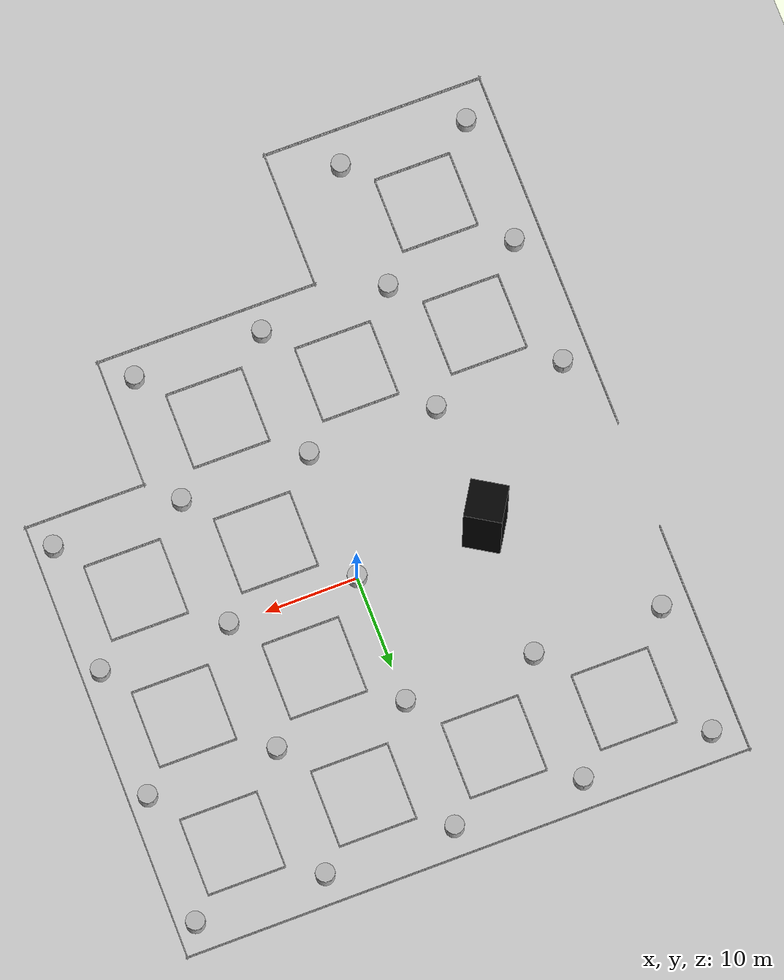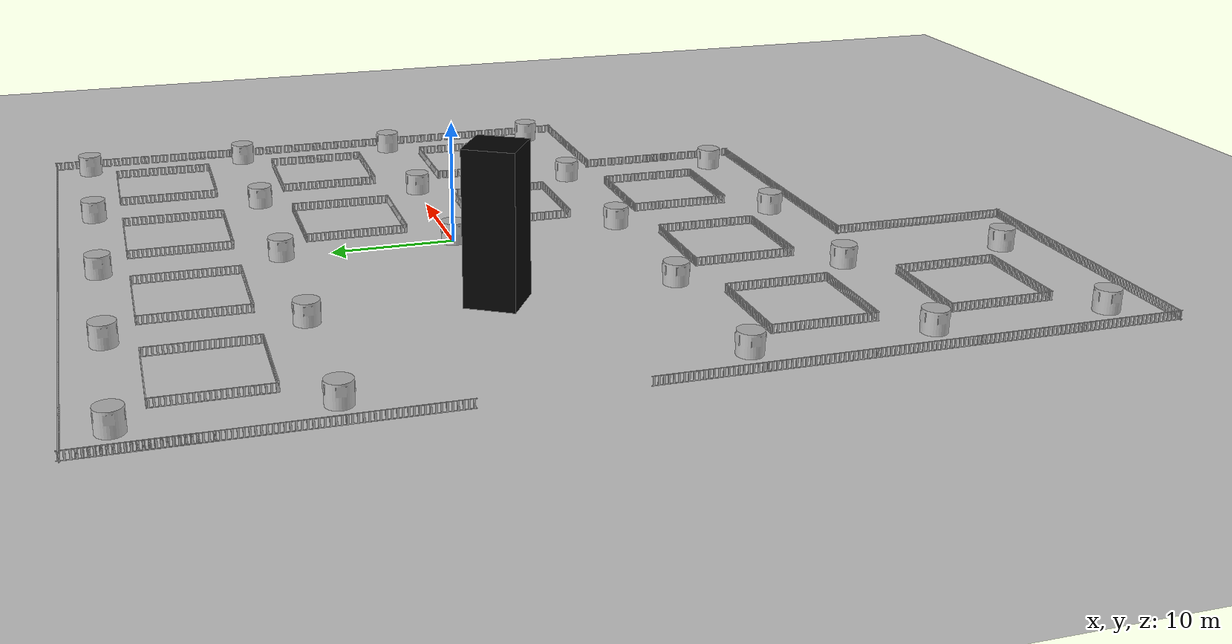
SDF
<sdf version='1.4'>
  <world name='default'>
    <!-- A global light source -->
    <include>
      <uri>model://sun</uri>
    </include>

    <!-- A ground plane -->
    <include>
      <uri>model://ground_plane</uri>
    </include>

    <physics type="ode">
      <real_time_update_rate>1000.0</real_time_update_rate>
      <max_step_size>0.001</max_step_size>
      <real_time_factor>1</real_time_factor>
      <ode>
        <solver>
          <type>quick</type>
          <iters>150</iters>
          <precon_iters>0</precon_iters>
          <sor>1.400000</sor>
          <use_dynamic_moi_rescaling>1</use_dynamic_moi_rescaling>
        </solver>
        <constraints>
          <cfm>0.00001</cfm>
          <erp>0.2</erp>
          <contact_max_correcting_vel>2000.000000</contact_max_correcting_vel>
          <contact_surface_layer>0.01000</contact_surface_layer>
        </constraints>
      </ode>
    </physics>

    <!-- Load world -->
    <include>
      <uri>model://turtlebot3_jussieu</uri>
    </include>

    <scene>
      <ambient>0.4 0.4 0.4 1</ambient>
      <background>0.7 0.7 0.7 1</background>
      <shadows>true</shadows>
    </scene>

    <gui fullscreen='0'>
      <camera name='user_camera'>
        <pose>0.8 0.0 12.0 0 1.5708 0</pose>
        <view_controller>orbit</view_controller>
      </camera>
    </gui>
  </world>
</sdf>

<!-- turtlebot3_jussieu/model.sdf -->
<sdf version='1.5'>
    <!-- Draw Circle -->
    <model name='Jussieu_World'>
      <static>1</static>
      <link name='jussieu'>

	<collision name='zamanski'>
          <pose>-14 0 0 0 0 45</pose>
          <geometry>
            <mesh>
              <uri>model://turtlebot3_jussieu/meshes/zamanski/zamanski.dae</uri>
              <scale>0.5 0.5 0.5</scale>
            </mesh>
          </geometry>
          <max_contacts>10</max_contacts>
          <surface>
            <bounce/>
            <friction>
              <ode/>
            </friction>
            <contact>
              <ode/>
            </contact>
          </surface>
        </collision>
        <visual name='zamanski'>
          <pose>-14 0 0 0 0 45</pose>
          <geometry>
            <mesh>
              <uri>model://turtlebot3_jussieu/meshes/zamanski/zamanski.dae</uri>
              <scale>0.5 0.5 0.5</scale>
            </mesh>
          </geometry>
          <material>
            <script>
            </script>
          </material>
        </visual>

	<collision name='barriere_H1'>
          <pose>-31 -10 0 0 0 0</pose>
          <geometry>
            <mesh>
              <uri>model://turtlebot3_jussieu/meshes/barrieres_H/barrieres_H.dae</uri>
              <scale>0.35 0.35 0.35</scale>
            </mesh>
          </geometry>
          <max_contacts>10</max_contacts>
          <surface>
            <bounce/>
            <friction>
              <ode/>
            </friction>
            <contact>
              <ode/>
            </contact>
          </surface>
        </collision>
        <visual name='barriere_H1'>
          <pose>-31 -10 0 0 0 0</pose>
          <geometry>
            <mesh>
              <uri>model://turtlebot3_jussieu/meshes/barrieres_H/barrieres_H.dae</uri>
              <scale>0.35 0.35 0.35</scale>
            </mesh>
          </geometry>
          <material>
            <script>
            </script>
          </material>
        </visual>

	<collision name='barriere_H3'>
          <pose>-31 -18 0 0 0 0</pose>
          <geometry>
            <mesh>
              <uri>model://turtlebot3_jussieu/meshes/barrieres_H/barrieres_H.dae</uri>
              <scale>0.35 0.35 0.35</scale>
            </mesh>
          </geometry>
          <max_contacts>10</max_contacts>
          <surface>
            <bounce/>
            <friction>
              <ode/>
            </friction>
            <contact>
              <ode/>
            </contact>
          </surface>
        </collision>
        <visual name='barriere_H3'>
          <pose>-31 -18 0 0 0 0</pose>
          <geometry>
            <mesh>
              <uri>model://turtlebot3_jussieu/meshes/barrieres_H/barrieres_H.dae</uri>
              <scale>0.35 0.35 0.35</scale>
            </mesh>
          </geometry>
          <material>
            <script>
            </script>
          </material>
        </visual>

	<collision name='barriere_H4'>
          <pose>-31 -26 0 0 0 0</pose>
          <geometry>
            <mesh>
              <uri>model://turtlebot3_jussieu/meshes/barrieres_H/barrieres_H.dae</uri>
              <scale>0.35 0.35 0.35</scale>
            </mesh>
          </geometry>
          <max_contacts>10</max_contacts>
          <surface>
            <bounce/>
            <friction>
              <ode/>
            </friction>
            <contact>
              <ode/>
            </contact>
          </surface>
        </collision>
        <visual name='barriere_H4'>
          <pose>-31 -26 0 0 0 0</pose>
          <geometry>
            <mesh>
              <uri>model://turtlebot3_jussieu/meshes/barrieres_H/barrieres_H.dae</uri>
              <scale>0.35 0.35 0.35</scale>
            </mesh>
          </geometry>
          <material>
            <script>
            </script>
          </material>
        </visual>

	<collision name='barriere_H5'>
          <pose>-31 -34 0 0 0 0</pose>
          <geometry>
            <mesh>
              <uri>model://turtlebot3_jussieu/meshes/barrieres_H/barrieres_H.dae</uri>
              <scale>0.35 0.35 0.35</scale>
            </mesh>
          </geometry>
          <max_contacts>10</max_contacts>
          <surface>
            <bounce/>
            <friction>
              <ode/>
            </friction>
            <contact>
              <ode/>
            </contact>
          </surface>
        </collision>
        <visual name='barriere_H5'>
          <pose>-31 -34 0 0 0 0</pose>
          <geometry>
            <mesh>
              <uri>model://turtlebot3_jussieu/meshes/barrieres_H/barrieres_H.dae</uri>
              <scale>0.35 0.35 0.35</scale>
            </mesh>
          </geometry>
          <material>
            <script>
            </script>
          </material>
        </visual>

	<collision name='barriere_H6'>
          <pose>-31 -42 0 0 0 0</pose>
          <geometry>
            <mesh>
              <uri>model://turtlebot3_jussieu/meshes/barrieres_H/barrieres_H.dae</uri>
              <scale>0.35 0.35 0.35</scale>
            </mesh>
          </geometry>
          <max_contacts>10</max_contacts>
          <surface>
            <bounce/>
            <friction>
              <ode/>
            </friction>
            <contact>
              <ode/>
            </contact>
          </surface>
        </collision>
        <visual name='barriere_H6'>
          <pose>-31 -42 0 0 0 0</pose>
          <geometry>
            <mesh>
              <uri>model://turtlebot3_jussieu/meshes/barrieres_H/barrieres_H.dae</uri>
              <scale>0.35 0.35 0.35</scale>
            </mesh>
          </geometry>
          <material>
            <script>
            </script>
          </material>
        </visual>

	<collision name='barriere_V7'>
          <pose>-27 -46 0 0 0 0</pose>
          <geometry>
            <mesh>
              <uri>model://turtlebot3_jussieu/meshes/barrieres_V/barrieres_V.dae</uri>
              <scale>0.35 0.35 0.35</scale>
            </mesh>
          </geometry>
          <max_contacts>10</max_contacts>
          <surface>
            <bounce/>
            <friction>
              <ode/>
            </friction>
            <contact>
              <ode/>
            </contact>
          </surface>
        </collision>
        <visual name='barriere_V7'>
          <pose>-27 -46 0 0 0 0</pose>
          <geometry>
            <mesh>
              <uri>model://turtlebot3_jussieu/meshes/barrieres_V/barrieres_V.dae</uri>
              <scale>0.35 0.35 0.35</scale>
            </mesh>
          </geometry>
          <material>
            <script>
            </script>
          </material>
        </visual>

	<collision name='barriere_V8'>
          <pose>-19 -46 0 0 0 0</pose>
          <geometry>
            <mesh>
              <uri>model://turtlebot3_jussieu/meshes/barrieres_V/barrieres_V.dae</uri>
              <scale>0.35 0.35 0.35</scale>
            </mesh>
          </geometry>
          <max_contacts>10</max_contacts>
          <surface>
            <bounce/>
            <friction>
              <ode/>
            </friction>
            <contact>
              <ode/>
            </contact>
          </surface>
        </collision>
        <visual name='barriere_V8'>
          <pose>-19 -46 0 0 0 0</pose>
          <geometry>
            <mesh>
              <uri>model://turtlebot3_jussieu/meshes/barrieres_V/barrieres_V.dae</uri>
              <scale>0.35 0.35 0.35</scale>
            </mesh>
          </geometry>
          <material>
            <script>
            </script>
          </material>
        </visual>

	<collision name='barriere_V9'>
          <pose>-11 -46 0 0 0 0</pose>
          <geometry>
            <mesh>
              <uri>model://turtlebot3_jussieu/meshes/barrieres_V/barrieres_V.dae</uri>
              <scale>0.35 0.35 0.35</scale>
            </mesh>
          </geometry>
          <max_contacts>10</max_contacts>
          <surface>
            <bounce/>
            <friction>
              <ode/>
            </friction>
            <contact>
              <ode/>
            </contact>
          </surface>
        </collision>
        <visual name='barriere_V9'>
          <pose>-11 -46 0 0 0 0</pose>
          <geometry>
            <mesh>
              <uri>model://turtlebot3_jussieu/meshes/barrieres_V/barrieres_V.dae</uri>
              <scale>0.35 0.35 0.35</scale>
            </mesh>
          </geometry>
          <material>
            <script>
            </script>
          </material>
        </visual>

	<collision name='barriere_H10'>
          <pose>-7 -42 0 0 0 0</pose>
          <geometry>
            <mesh>
              <uri>model://turtlebot3_jussieu/meshes/barrieres_H/barrieres_H.dae</uri>
              <scale>0.35 0.35 0.35</scale>
            </mesh>
          </geometry>
          <max_contacts>10</max_contacts>
          <surface>
            <bounce/>
            <friction>
              <ode/>
            </friction>
            <contact>
              <ode/>
            </contact>
          </surface>
        </collision>
        <visual name='barriere_H10'>
          <pose>-7 -42 0 0 0 0</pose>
          <geometry>
            <mesh>
              <uri>model://turtlebot3_jussieu/meshes/barrieres_H/barrieres_H.dae</uri>
              <scale>0.35 0.35 0.35</scale>
            </mesh>
          </geometry>
          <material>
            <script>
            </script>
          </material>
        </visual>

	<collision name='barriere_H11'>
          <pose>-7 -35 0 0 0 0</pose>
          <geometry>
            <mesh>
              <uri>model://turtlebot3_jussieu/meshes/barrieres_H/barrieres_H.dae</uri>
              <scale>0.35 0.35 0.35</scale>
            </mesh>
          </geometry>
          <max_contacts>10</max_contacts>
          <surface>
            <bounce/>
            <friction>
              <ode/>
            </friction>
            <contact>
              <ode/>
            </contact>
          </surface>
        </collision>
        <visual name='barriere_H11'>
          <pose>-7 -35 0 0 0 0</pose>
          <geometry>
            <mesh>
              <uri>model://turtlebot3_jussieu/meshes/barrieres_H/barrieres_H.dae</uri>
              <scale>0.35 0.35 0.35</scale>
            </mesh>
          </geometry>
          <material>
            <script>
            </script>
          </material>
        </visual>

	<collision name='barriere_V12'>
          <pose>-3 -31 0 0 0 0</pose>
          <geometry>
            <mesh>
              <uri>model://turtlebot3_jussieu/meshes/barrieres_V/barrieres_V.dae</uri>
              <scale>0.35 0.35 0.35</scale>
            </mesh>
          </geometry>
          <max_contacts>10</max_contacts>
          <surface>
            <bounce/>
            <friction>
              <ode/>
            </friction>
            <contact>
              <ode/>
            </contact>
          </surface>
        </collision>
        <visual name='barriere_V12'>
          <pose>-3 -31 0 0 0 0</pose>
          <geometry>
            <mesh>
              <uri>model://turtlebot3_jussieu/meshes/barrieres_V/barrieres_V.dae</uri>
              <scale>0.35 0.35 0.35</scale>
            </mesh>
          </geometry>
          <material>
            <script>
            </script>
          </material>
        </visual>

	<collision name='barriere_V13'>
          <pose>5 -31 0 0 0 0</pose>
          <geometry>
            <mesh>
              <uri>model://turtlebot3_jussieu/meshes/barrieres_V/barrieres_V.dae</uri>
              <scale>0.35 0.35 0.35</scale>
            </mesh>
          </geometry>
          <max_contacts>10</max_contacts>
          <surface>
            <bounce/>
            <friction>
              <ode/>
            </friction>
            <contact>
              <ode/>
            </contact>
          </surface>
        </collision>
        <visual name='barriere_V13'>
          <pose>5 -31 0 0 0 0</pose>
          <geometry>
            <mesh>
              <uri>model://turtlebot3_jussieu/meshes/barrieres_V/barrieres_V.dae</uri>
              <scale>0.35 0.35 0.35</scale>
            </mesh>
          </geometry>
          <material>
            <script>
            </script>
          </material>
        </visual>

	<collision name='barriere_V14'>
          <pose>13 -31 0 0 0 0</pose>
          <geometry>
            <mesh>
              <uri>model://turtlebot3_jussieu/meshes/barrieres_V/barrieres_V.dae</uri>
              <scale>0.35 0.35 0.35</scale>
            </mesh>
          </geometry>
          <max_contacts>10</max_contacts>
          <surface>
            <bounce/>
            <friction>
              <ode/>
            </friction>
            <contact>
              <ode/>
            </contact>
          </surface>
        </collision>
        <visual name='barriere_V14'>
          <pose>13 -31 0 0 0 0</pose>
          <geometry>
            <mesh>
              <uri>model://turtlebot3_jussieu/meshes/barrieres_V/barrieres_V.dae</uri>
              <scale>0.35 0.35 0.35</scale>
            </mesh>
          </geometry>
          <material>
            <script>
            </script>
          </material>
        </visual>

	<collision name='barriere_H15'>
          <pose>17 -27 0 0 0 0</pose>
          <geometry>
            <mesh>
              <uri>model://turtlebot3_jussieu/meshes/barrieres_H/barrieres_H.dae</uri>
              <scale>0.35 0.35 0.35</scale>
            </mesh>
          </geometry>
          <max_contacts>10</max_contacts>
          <surface>
            <bounce/>
            <friction>
              <ode/>
            </friction>
            <contact>
              <ode/>
            </contact>
          </surface>
        </collision>
        <visual name='barriere_H15'>
          <pose>17 -27 0 0 0 0</pose>
          <geometry>
            <mesh>
              <uri>model://turtlebot3_jussieu/meshes/barrieres_H/barrieres_H.dae</uri>
              <scale>0.35 0.35 0.35</scale>
            </mesh>
          </geometry>
          <material>
            <script>
            </script>
          </material>
        </visual>

	<collision name='barriere_H16'>
          <pose>17 -21 0 0 0 0</pose>
          <geometry>
            <mesh>
              <uri>model://turtlebot3_jussieu/meshes/barrieres_H/barrieres_H.dae</uri>
              <scale>0.35 0.35 0.35</scale>
            </mesh>
          </geometry>
          <max_contacts>10</max_contacts>
          <surface>
            <bounce/>
            <friction>
              <ode/>
            </friction>
            <contact>
              <ode/>
            </contact>
          </surface>
        </collision>
        <visual name='barriere_H16'>
          <pose>17 -21 0 0 0 0</pose>
          <geometry>
            <mesh>
              <uri>model://turtlebot3_jussieu/meshes/barrieres_H/barrieres_H.dae</uri>
              <scale>0.35 0.35 0.35</scale>
            </mesh>
          </geometry>
          <material>
            <script>
            </script>
          </material>
        </visual>

	<collision name='barriere_V17'>
          <pose>21 -17 0 0 0 0</pose>
          <geometry>
            <mesh>
              <uri>model://turtlebot3_jussieu/meshes/barrieres_V/barrieres_V.dae</uri>
              <scale>0.35 0.35 0.35</scale>
            </mesh>
          </geometry>
          <max_contacts>10</max_contacts>
          <surface>
            <bounce/>
            <friction>
              <ode/>
            </friction>
            <contact>
              <ode/>
            </contact>
          </surface>
        </collision>
        <visual name='barriere_V17'>
          <pose>21 -17 0 0 0 0</pose>
          <geometry>
            <mesh>
              <uri>model://turtlebot3_jussieu/meshes/barrieres_V/barrieres_V.dae</uri>
              <scale>0.35 0.35 0.35</scale>
            </mesh>
          </geometry>
          <material>
            <script>
            </script>
          </material>
        </visual>

	<collision name='barriere_V18'>
          <pose>26 -17 0 0 0 0</pose>
          <geometry>
            <mesh>
              <uri>model://turtlebot3_jussieu/meshes/barrieres_V/barrieres_V.dae</uri>
              <scale>0.35 0.35 0.35</scale>
            </mesh>
          </geometry>
          <max_contacts>10</max_contacts>
          <surface>
            <bounce/>
            <friction>
              <ode/>
            </friction>
            <contact>
              <ode/>
            </contact>
          </surface>
        </collision>
        <visual name='barriere_V18'>
          <pose>26 -17 0 0 0 0</pose>
          <geometry>
            <mesh>
              <uri>model://turtlebot3_jussieu/meshes/barrieres_V/barrieres_V.dae</uri>
              <scale>0.35 0.35 0.35</scale>
            </mesh>
          </geometry>
          <material>
            <script>
            </script>
          </material>
        </visual>

	<collision name='barriere_H19'>
          <pose>30 -13 0 0 0 0</pose>
          <geometry>
            <mesh>
              <uri>model://turtlebot3_jussieu/meshes/barrieres_H/barrieres_H.dae</uri>
              <scale>0.35 0.35 0.35</scale>
            </mesh>
          </geometry>
          <max_contacts>10</max_contacts>
          <surface>
            <bounce/>
            <friction>
              <ode/>
            </friction>
            <contact>
              <ode/>
            </contact>
          </surface>
        </collision>
        <visual name='barriere_H19'>
          <pose>30 -13 0 0 0 0</pose>
          <geometry>
            <mesh>
              <uri>model://turtlebot3_jussieu/meshes/barrieres_H/barrieres_H.dae</uri>
              <scale>0.35 0.35 0.35</scale>
            </mesh>
          </geometry>
          <material>
            <script>
            </script>
          </material>
        </visual>

	<collision name='barriere_H20'>
          <pose>30 -5 0 0 0 0</pose>
          <geometry>
            <mesh>
              <uri>model://turtlebot3_jussieu/meshes/barrieres_H/barrieres_H.dae</uri>
              <scale>0.35 0.35 0.35</scale>
            </mesh>
          </geometry>
          <max_contacts>10</max_contacts>
          <surface>
            <bounce/>
            <friction>
              <ode/>
            </friction>
            <contact>
              <ode/>
            </contact>
          </surface>
        </collision>
        <visual name='barriere_H20'>
          <pose>30 -5 0 0 0 0</pose>
          <geometry>
            <mesh>
              <uri>model://turtlebot3_jussieu/meshes/barrieres_H/barrieres_H.dae</uri>
              <scale>0.35 0.35 0.35</scale>
            </mesh>
          </geometry>
          <material>
            <script>
            </script>
          </material>
        </visual>

	<collision name='barriere_H21'>
          <pose>30 3 0 0 0 0</pose>
          <geometry>
            <mesh>
              <uri>model://turtlebot3_jussieu/meshes/barrieres_H/barrieres_H.dae</uri>
              <scale>0.35 0.35 0.35</scale>
            </mesh>
          </geometry>
          <max_contacts>10</max_contacts>
          <surface>
            <bounce/>
            <friction>
              <ode/>
            </friction>
            <contact>
              <ode/>
            </contact>
          </surface>
        </collision>
        <visual name='barriere_H21'>
          <pose>30 3 0 0 0 0</pose>
          <geometry>
            <mesh>
              <uri>model://turtlebot3_jussieu/meshes/barrieres_H/barrieres_H.dae</uri>
              <scale>0.35 0.35 0.35</scale>
            </mesh>
          </geometry>
          <material>
            <script>
            </script>
          </material>
        </visual>

	<collision name='barriere_H22'>
          <pose>30 11 0 0 0 0</pose>
          <geometry>
            <mesh>
              <uri>model://turtlebot3_jussieu/meshes/barrieres_H/barrieres_H.dae</uri>
              <scale>0.35 0.35 0.35</scale>
            </mesh>
          </geometry>
          <max_contacts>10</max_contacts>
          <surface>
            <bounce/>
            <friction>
              <ode/>
            </friction>
            <contact>
              <ode/>
            </contact>
          </surface>
        </collision>
        <visual name='barriere_H22'>
          <pose>30 11 0 0 0 0</pose>
          <geometry>
            <mesh>
              <uri>model://turtlebot3_jussieu/meshes/barrieres_H/barrieres_H.dae</uri>
              <scale>0.35 0.35 0.35</scale>
            </mesh>
          </geometry>
          <material>
            <script>
            </script>
          </material>
        </visual>

	<collision name='barriere_H23'>
          <pose>30 19 0 0 0 0</pose>
          <geometry>
            <mesh>
              <uri>model://turtlebot3_jussieu/meshes/barrieres_H/barrieres_H.dae</uri>
              <scale>0.35 0.35 0.35</scale>
            </mesh>
          </geometry>
          <max_contacts>10</max_contacts>
          <surface>
            <bounce/>
            <friction>
              <ode/>
            </friction>
            <contact>
              <ode/>
            </contact>
          </surface>
        </collision>
        <visual name='barriere_H23'>
          <pose>30 19 0 0 0 0</pose>
          <geometry>
            <mesh>
              <uri>model://turtlebot3_jussieu/meshes/barrieres_H/barrieres_H.dae</uri>
              <scale>0.35 0.35 0.35</scale>
            </mesh>
          </geometry>
          <material>
            <script>
            </script>
          </material>
        </visual>

	<collision name='barriere_H24'>
          <pose>30 27 0 0 0 0</pose>
          <geometry>
            <mesh>
              <uri>model://turtlebot3_jussieu/meshes/barrieres_H/barrieres_H.dae</uri>
              <scale>0.35 0.35 0.35</scale>
            </mesh>
          </geometry>
          <max_contacts>10</max_contacts>
          <surface>
            <bounce/>
            <friction>
              <ode/>
            </friction>
            <contact>
              <ode/>
            </contact>
          </surface>
        </collision>
        <visual name='barriere_H24'>
          <pose>30 27 0 0 0 0</pose>
          <geometry>
            <mesh>
              <uri>model://turtlebot3_jussieu/meshes/barrieres_H/barrieres_H.dae</uri>
              <scale>0.35 0.35 0.35</scale>
            </mesh>
          </geometry>
          <material>
            <script>
            </script>
          </material>
        </visual>

	<collision name='barriere_V25'>
          <pose>26 31 0 0 0 0</pose>
          <geometry>
            <mesh>
              <uri>model://turtlebot3_jussieu/meshes/barrieres_V/barrieres_V.dae</uri>
              <scale>0.35 0.35 0.35</scale>
            </mesh>
          </geometry>
          <max_contacts>10</max_contacts>
          <surface>
            <bounce/>
            <friction>
              <ode/>
            </friction>
            <contact>
              <ode/>
            </contact>
          </surface>
        </collision>
        <visual name='barriere_V25'>
          <pose>26 31 0 0 0 0</pose>
          <geometry>
            <mesh>
              <uri>model://turtlebot3_jussieu/meshes/barrieres_V/barrieres_V.dae</uri>
              <scale>0.35 0.35 0.35</scale>
            </mesh>
          </geometry>
          <material>
            <script>
            </script>
          </material>
        </visual>

	<collision name='barriere_V26'>
          <pose>18 31 0 0 0 0</pose>
          <geometry>
            <mesh>
              <uri>model://turtlebot3_jussieu/meshes/barrieres_V/barrieres_V.dae</uri>
              <scale>0.35 0.35 0.35</scale>
            </mesh>
          </geometry>
          <max_contacts>10</max_contacts>
          <surface>
            <bounce/>
            <friction>
              <ode/>
            </friction>
            <contact>
              <ode/>
            </contact>
          </surface>
        </collision>
        <visual name='barriere_V26'>
          <pose>18 31 0 0 0 0</pose>
          <geometry>
            <mesh>
              <uri>model://turtlebot3_jussieu/meshes/barrieres_V/barrieres_V.dae</uri>
              <scale>0.35 0.35 0.35</scale>
            </mesh>
          </geometry>
          <material>
            <script>
            </script>
          </material>
        </visual>

	<collision name='barriere_V27'>
          <pose>10 31 0 0 0 0</pose>
          <geometry>
            <mesh>
              <uri>model://turtlebot3_jussieu/meshes/barrieres_V/barrieres_V.dae</uri>
              <scale>0.35 0.35 0.35</scale>
            </mesh>
          </geometry>
          <max_contacts>10</max_contacts>
          <surface>
            <bounce/>
            <friction>
              <ode/>
            </friction>
            <contact>
              <ode/>
            </contact>
          </surface>
        </collision>
        <visual name='barriere_V27'>
          <pose>10 31 0 0 0 0</pose>
          <geometry>
            <mesh>
              <uri>model://turtlebot3_jussieu/meshes/barrieres_V/barrieres_V.dae</uri>
              <scale>0.35 0.35 0.35</scale>
            </mesh>
          </geometry>
          <material>
            <script>
            </script>
          </material>
        </visual>

	<collision name='barriere_V28'>
          <pose>2 31 0 0 0 0</pose>
          <geometry>
            <mesh>
              <uri>model://turtlebot3_jussieu/meshes/barrieres_V/barrieres_V.dae</uri>
              <scale>0.35 0.35 0.35</scale>
            </mesh>
          </geometry>
          <max_contacts>10</max_contacts>
          <surface>
            <bounce/>
            <friction>
              <ode/>
            </friction>
            <contact>
              <ode/>
            </contact>
          </surface>
        </collision>
        <visual name='barriere_V28'>
          <pose>2 31 0 0 0 0</pose>
          <geometry>
            <mesh>
              <uri>model://turtlebot3_jussieu/meshes/barrieres_V/barrieres_V.dae</uri>
              <scale>0.35 0.35 0.35</scale>
            </mesh>
          </geometry>
          <material>
            <script>
            </script>
          </material>
        </visual>

	<collision name='barriere_V29'>
          <pose>-6 31 0 0 0 0</pose>
          <geometry>
            <mesh>
              <uri>model://turtlebot3_jussieu/meshes/barrieres_V/barrieres_V.dae</uri>
              <scale>0.35 0.35 0.35</scale>
            </mesh>
          </geometry>
          <max_contacts>10</max_contacts>
          <surface>
            <bounce/>
            <friction>
              <ode/>
            </friction>
            <contact>
              <ode/>
            </contact>
          </surface>
        </collision>
        <visual name='barriere_V29'>
          <pose>-6 31 0 0 0 0</pose>
          <geometry>
            <mesh>
              <uri>model://turtlebot3_jussieu/meshes/barrieres_V/barrieres_V.dae</uri>
              <scale>0.35 0.35 0.35</scale>
            </mesh>
          </geometry>
          <material>
            <script>
            </script>
          </material>
        </visual>

	<collision name='barriere_V30'>
          <pose>-14 31 0 0 0 0</pose>
          <geometry>
            <mesh>
              <uri>model://turtlebot3_jussieu/meshes/barrieres_V/barrieres_V.dae</uri>
              <scale>0.35 0.35 0.35</scale>
            </mesh>
          </geometry>
          <max_contacts>10</max_contacts>
          <surface>
            <bounce/>
            <friction>
              <ode/>
            </friction>
            <contact>
              <ode/>
            </contact>
          </surface>
        </collision>
        <visual name='barriere_V30'>
          <pose>-14 31 0 0 0 0</pose>
          <geometry>
            <mesh>
              <uri>model://turtlebot3_jussieu/meshes/barrieres_V/barrieres_V.dae</uri>
              <scale>0.35 0.35 0.35</scale>
            </mesh>
          </geometry>
          <material>
            <script>
            </script>
          </material>
        </visual>

	<collision name='barriere_V31'>
          <pose>-22 31 0 0 0 0</pose>
          <geometry>
            <mesh>
              <uri>model://turtlebot3_jussieu/meshes/barrieres_V/barrieres_V.dae</uri>
              <scale>0.35 0.35 0.35</scale>
            </mesh>
          </geometry>
          <max_contacts>10</max_contacts>
          <surface>
            <bounce/>
            <friction>
              <ode/>
            </friction>
            <contact>
              <ode/>
            </contact>
          </surface>
        </collision>
        <visual name='barriere_V31'>
          <pose>-22 31 0 0 0 0</pose>
          <geometry>
            <mesh>
              <uri>model://turtlebot3_jussieu/meshes/barrieres_V/barrieres_V.dae</uri>
              <scale>0.35 0.35 0.35</scale>
            </mesh>
          </geometry>
          <material>
            <script>
            </script>
          </material>
        </visual>

	<collision name='barriere_V32'>
          <pose>-27 31 0 0 0 0</pose>
          <geometry>
            <mesh>
              <uri>model://turtlebot3_jussieu/meshes/barrieres_V/barrieres_V.dae</uri>
              <scale>0.35 0.35 0.35</scale>
            </mesh>
          </geometry>
          <max_contacts>10</max_contacts>
          <surface>
            <bounce/>
            <friction>
              <ode/>
            </friction>
            <contact>
              <ode/>
            </contact>
          </surface>
        </collision>
        <visual name='barriere_V32'>
          <pose>-27 31 0 0 0 0</pose>
          <geometry>
            <mesh>
              <uri>model://turtlebot3_jussieu/meshes/barrieres_V/barrieres_V.dae</uri>
              <scale>0.35 0.35 0.35</scale>
            </mesh>
          </geometry>
          <material>
            <script>
            </script>
          </material>
        </visual>

	<collision name='barriere_H33'>
          <pose>-31 18 0 0 0 0</pose>
          <geometry>
            <mesh>
              <uri>model://turtlebot3_jussieu/meshes/barrieres_H/barrieres_H.dae</uri>
              <scale>0.35 0.35 0.35</scale>
            </mesh>
          </geometry>
          <max_contacts>10</max_contacts>
          <surface>
            <bounce/>
            <friction>
              <ode/>
            </friction>
            <contact>
              <ode/>
            </contact>
          </surface>
        </collision>
        <visual name='barriere_H33'>
          <pose>-31 18 0 0 0 0</pose>
          <geometry>
            <mesh>
              <uri>model://turtlebot3_jussieu/meshes/barrieres_H/barrieres_H.dae</uri>
              <scale>0.35 0.35 0.35</scale>
            </mesh>
          </geometry>
          <material>
            <script>
            </script>
          </material>
        </visual>

	<collision name='barriere_H34'>
          <pose>-31 26 0 0 0 0</pose>
          <geometry>
            <mesh>
              <uri>model://turtlebot3_jussieu/meshes/barrieres_H/barrieres_H.dae</uri>
              <scale>0.35 0.35 0.35</scale>
            </mesh>
          </geometry>
          <max_contacts>10</max_contacts>
          <surface>
            <bounce/>
            <friction>
              <ode/>
            </friction>
            <contact>
              <ode/>
            </contact>
          </surface>
        </collision>
        <visual name='barriere_H34'>
          <pose>-31 26 0 0 0 0</pose>
          <geometry>
            <mesh>
              <uri>model://turtlebot3_jussieu/meshes/barrieres_H/barrieres_H.dae</uri>
              <scale>0.35 0.35 0.35</scale>
            </mesh>
          </geometry>
          <material>
            <script>
            </script>
          </material>
        </visual>

	<collision name='barriere_H35'>
          <pose>-31 27 0 0 0 0</pose>
          <geometry>
            <mesh>
              <uri>model://turtlebot3_jussieu/meshes/barrieres_H/barrieres_H.dae</uri>
              <scale>0.35 0.35 0.35</scale>
            </mesh>
          </geometry>
          <max_contacts>10</max_contacts>
          <surface>
            <bounce/>
            <friction>
              <ode/>
            </friction>
            <contact>
              <ode/>
            </contact>
          </surface>
        </collision>
        <visual name='barriere_H35'>
          <pose>-31 27 0 0 0 0</pose>
          <geometry>
            <mesh>
              <uri>model://turtlebot3_jussieu/meshes/barrieres_H/barrieres_H.dae</uri>
              <scale>0.35 0.35 0.35</scale>
            </mesh>
          </geometry>
          <material>
            <script>
            </script>
          </material>
        </visual>

	<collision name='barriere_H36'>
          <pose>-31 10 0 0 0 0</pose>
          <geometry>
            <mesh>
              <uri>model://turtlebot3_jussieu/meshes/barrieres_H/barrieres_H.dae</uri>
              <scale>0.35 0.35 0.35</scale>
            </mesh>
          </geometry>
          <max_contacts>10</max_contacts>
          <surface>
            <bounce/>
            <friction>
              <ode/>
            </friction>
            <contact>
              <ode/>
            </contact>
          </surface>
        </collision>
        <visual name='barriere_H36'>
          <pose>-31 10 0 0 0 0</pose>
          <geometry>
            <mesh>
              <uri>model://turtlebot3_jussieu/meshes/barrieres_H/barrieres_H.dae</uri>
              <scale>0.35 0.35 0.35</scale>
            </mesh>
          </geometry>
          <material>
            <script>
            </script>
          </material>
        </visual>

	<collision name='barriere_carre1'>
          <pose>-16.8 -25.2 0 0 0 0</pose>
          <geometry>
            <mesh>
              <uri>model://turtlebot3_jussieu/meshes/barrieres_carre/barrieres_carre.dae</uri>
              <scale>0.35 0.35 0.35</scale>
            </mesh>
          </geometry>
          <max_contacts>10</max_contacts>
          <surface>
            <bounce/>
            <friction>
              <ode/>
            </friction>
            <contact>
              <ode/>
            </contact>
          </surface>
        </collision>
        <visual name='barriere_carre1'>
          <pose>-16.8 -25.2 0 0 0 0</pose>
          <geometry>
            <mesh>
              <uri>model://turtlebot3_jussieu/meshes/barrieres_carre/barrieres_carre.dae</uri>
              <scale>0.35 0.35 0.35</scale>
            </mesh>
          </geometry>
          <material>
            <script>
            </script>
          </material>
        </visual>

	<collision name='barriere_carre2'>
          <pose>-16.8 -39.4 0 0 0 0</pose>
          <geometry>
            <mesh>
              <uri>model://turtlebot3_jussieu/meshes/barrieres_carre/barrieres_carre.dae</uri>
              <scale>0.35 0.35 0.35</scale>
            </mesh>
          </geometry>
          <max_contacts>10</max_contacts>
          <surface>
            <bounce/>
            <friction>
              <ode/>
            </friction>
            <contact>
              <ode/>
            </contact>
          </surface>
        </collision>
        <visual name='barriere_carre2'>
          <pose>-16.8 -39.4 0 0 0 0</pose>
          <geometry>
            <mesh>
              <uri>model://turtlebot3_jussieu/meshes/barrieres_carre/barrieres_carre.dae</uri>
              <scale>0.35 0.35 0.35</scale>
            </mesh>
          </geometry>
          <material>
            <script>
            </script>
          </material>
        </visual>

	<collision name='barriere_carre3'>
          <pose>-2.6 -25.2 0 0 0 0</pose>
          <geometry>
            <mesh>
              <uri>model://turtlebot3_jussieu/meshes/barrieres_carre/barrieres_carre.dae</uri>
              <scale>0.35 0.35 0.35</scale>
            </mesh>
          </geometry>
          <max_contacts>10</max_contacts>
          <surface>
            <bounce/>
            <friction>
              <ode/>
            </friction>
            <contact>
              <ode/>
            </contact>
          </surface>
        </collision>
        <visual name='barriere_carre3'>
          <pose>-2.6 -25.2 0 0 0 0</pose>
          <geometry>
            <mesh>
              <uri>model://turtlebot3_jussieu/meshes/barrieres_carre/barrieres_carre.dae</uri>
              <scale>0.35 0.35 0.35</scale>
            </mesh>
          </geometry>
          <material>
            <script>
            </script>
          </material>
        </visual>

	<collision name='barriere_carre4'>
          <pose>11.6 -11 0 0 0 0</pose>
          <geometry>
            <mesh>
              <uri>model://turtlebot3_jussieu/meshes/barrieres_carre/barrieres_carre.dae</uri>
              <scale>0.35 0.35 0.35</scale>
            </mesh>
          </geometry>
          <max_contacts>10</max_contacts>
          <surface>
            <bounce/>
            <friction>
              <ode/>
            </friction>
            <contact>
              <ode/>
            </contact>
          </surface>
        </collision>
        <visual name='barriere_carre4'>
          <pose>11.6 -11 0 0 0 0</pose>
          <geometry>
            <mesh>
              <uri>model://turtlebot3_jussieu/meshes/barrieres_carre/barrieres_carre.dae</uri>
              <scale>0.35 0.35 0.35</scale>
            </mesh>
          </geometry>
          <material>
            <script>
            </script>
          </material>
        </visual>

	<collision name='barriere_carre5'>
          <pose>11.6 -25.2 0 0 0 0</pose>
          <geometry>
            <mesh>
              <uri>model://turtlebot3_jussieu/meshes/barrieres_carre/barrieres_carre.dae</uri>
              <scale>0.35 0.35 0.35</scale>
            </mesh>
          </geometry>
          <max_contacts>10</max_contacts>
          <surface>
            <bounce/>
            <friction>
              <ode/>
            </friction>
            <contact>
              <ode/>
            </contact>
          </surface>
        </collision>
        <visual name='barriere_carre5'>
          <pose>11.6 -25.2 0 0 0 0</pose>
          <geometry>
            <mesh>
              <uri>model://turtlebot3_jussieu/meshes/barrieres_carre/barrieres_carre.dae</uri>
              <scale>0.35 0.35 0.35</scale>
            </mesh>
          </geometry>
          <material>
            <script>
            </script>
          </material>
        </visual>

	<collision name='barriere_carre6'>
          <pose>25.8 -11 0 0 0 0</pose>
          <geometry>
            <mesh>
              <uri>model://turtlebot3_jussieu/meshes/barrieres_carre/barrieres_carre.dae</uri>
              <scale>0.35 0.35 0.35</scale>
            </mesh>
          </geometry>
          <max_contacts>10</max_contacts>
          <surface>
            <bounce/>
            <friction>
              <ode/>
            </friction>
            <contact>
              <ode/>
            </contact>
          </surface>
        </collision>
        <visual name='barriere_carre6'>
          <pose>25.8 -11 0 0 0 0</pose>
          <geometry>
            <mesh>
              <uri>model://turtlebot3_jussieu/meshes/barrieres_carre/barrieres_carre.dae</uri>
              <scale>0.35 0.35 0.35</scale>
            </mesh>
          </geometry>
          <material>
            <script>
            </script>
          </material>
        </visual>

	<collision name='barriere_carre7'>
          <pose>25.8 3.2 0 0 0 0</pose>
          <geometry>
            <mesh>
              <uri>model://turtlebot3_jussieu/meshes/barrieres_carre/barrieres_carre.dae</uri>
              <scale>0.35 0.35 0.35</scale>
            </mesh>
          </geometry>
          <max_contacts>10</max_contacts>
          <surface>
            <bounce/>
            <friction>
              <ode/>
            </friction>
            <contact>
              <ode/>
            </contact>
          </surface>
        </collision>
        <visual name='barriere_carre7'>
          <pose>25.8 3.2 0 0 0 0</pose>
          <geometry>
            <mesh>
              <uri>model://turtlebot3_jussieu/meshes/barrieres_carre/barrieres_carre.dae</uri>
              <scale>0.35 0.35 0.35</scale>
            </mesh>
          </geometry>
          <material>
            <script>
            </script>
          </material>
        </visual>

	<collision name='barriere_carre8'>
          <pose>11.6 3.2 0 0 0 0</pose>
          <geometry>
            <mesh>
              <uri>model://turtlebot3_jussieu/meshes/barrieres_carre/barrieres_carre.dae</uri>
              <scale>0.35 0.35 0.35</scale>
            </mesh>
          </geometry>
          <max_contacts>10</max_contacts>
          <surface>
            <bounce/>
            <friction>
              <ode/>
            </friction>
            <contact>
              <ode/>
            </contact>
          </surface>
        </collision>
        <visual name='barriere_carre8'>
          <pose>11.6 3.2 0 0 0 0</pose>
          <geometry>
            <mesh>
              <uri>model://turtlebot3_jussieu/meshes/barrieres_carre/barrieres_carre.dae</uri>
              <scale>0.35 0.35 0.35</scale>
            </mesh>
          </geometry>
          <material>
            <script>
            </script>
          </material>
        </visual>

	<collision name='barriere_carre9'>
          <pose>25.8 17.4 0 0 0 0</pose>
          <geometry>
            <mesh>
              <uri>model://turtlebot3_jussieu/meshes/barrieres_carre/barrieres_carre.dae</uri>
              <scale>0.35 0.35 0.35</scale>
            </mesh>
          </geometry>
          <max_contacts>10</max_contacts>
          <surface>
            <bounce/>
            <friction>
              <ode/>
            </friction>
            <contact>
              <ode/>
            </contact>
          </surface>
        </collision>
        <visual name='barriere_carre9'>
          <pose>25.8 17.4 0 0 0 0</pose>
          <geometry>
            <mesh>
              <uri>model://turtlebot3_jussieu/meshes/barrieres_carre/barrieres_carre.dae</uri>
              <scale>0.35 0.35 0.35</scale>
            </mesh>
          </geometry>
          <material>
            <script>
            </script>
          </material>
        </visual>

	<collision name='barriere_carre10'>
          <pose>11.6 17.4 0 0 0 0</pose>
          <geometry>
            <mesh>
              <uri>model://turtlebot3_jussieu/meshes/barrieres_carre/barrieres_carre.dae</uri>
              <scale>0.35 0.35 0.35</scale>
            </mesh>
          </geometry>
          <max_contacts>10</max_contacts>
          <surface>
            <bounce/>
            <friction>
              <ode/>
            </friction>
            <contact>
              <ode/>
            </contact>
          </surface>
        </collision>
        <visual name='barriere_carre10'>
          <pose>11.6 17.4 0 0 0 0</pose>
          <geometry>
            <mesh>
              <uri>model://turtlebot3_jussieu/meshes/barrieres_carre/barrieres_carre.dae</uri>
              <scale>0.35 0.35 0.35</scale>
            </mesh>
          </geometry>
          <material>
            <script>
            </script>
          </material>
        </visual>

	<collision name='barriere_carre11'>
          <pose>-2.6 17.4 0 0 0 0</pose>
          <geometry>
            <mesh>
              <uri>model://turtlebot3_jussieu/meshes/barrieres_carre/barrieres_carre.dae</uri>
              <scale>0.35 0.35 0.35</scale>
            </mesh>
          </geometry>
          <max_contacts>10</max_contacts>
          <surface>
            <bounce/>
            <friction>
              <ode/>
            </friction>
            <contact>
              <ode/>
            </contact>
          </surface>
        </collision>
        <visual name='barriere_carre11'>
          <pose>-2.6 17.4 0 0 0 0</pose>
          <geometry>
            <mesh>
              <uri>model://turtlebot3_jussieu/meshes/barrieres_carre/barrieres_carre.dae</uri>
              <scale>0.35 0.35 0.35</scale>
            </mesh>
          </geometry>
          <material>
            <script>
            </script>
          </material>
        </visual>

	<collision name='barriere_carre12'>
          <pose>-16.8 17.4 0 0 0 0</pose>
          <geometry>
            <mesh>
              <uri>model://turtlebot3_jussieu/meshes/barrieres_carre/barrieres_carre.dae</uri>
              <scale>0.35 0.35 0.35</scale>
            </mesh>
          </geometry>
          <max_contacts>10</max_contacts>
          <surface>
            <bounce/>
            <friction>
              <ode/>
            </friction>
            <contact>
              <ode/>
            </contact>
          </surface>
        </collision>
        <visual name='barriere_carre12'>
          <pose>-16.8 17.4 0 0 0 0</pose>
          <geometry>
            <mesh>
              <uri>model://turtlebot3_jussieu/meshes/barrieres_carre/barrieres_carre.dae</uri>
              <scale>0.35 0.35 0.35</scale>
            </mesh>
          </geometry>
          <material>
            <script>
            </script>
          </material>
        </visual>

	<collision name='tour46'>
          <pose>-28 -14 0 0 0 0</pose>
          <geometry>
            <mesh>
              <uri>model://turtlebot3_jussieu/meshes/tour46/tour46.dae</uri>
              <scale>0.5 0.5 0.5</scale>
            </mesh>
          </geometry>
          <max_contacts>10</max_contacts>
          <surface>
            <bounce/>
            <friction>
              <ode/>
            </friction>
            <contact>
              <ode/>
            </contact>
          </surface>
        </collision>
        <visual name='tour46'>
          <pose>-28 -14 0 0 0 0</pose>
          <geometry>
            <mesh>
              <uri>model://turtlebot3_jussieu/meshes/tour46/tour46.dae</uri>
              <scale>0.5 0.5 0.5</scale>
            </mesh>
          </geometry>
          <material>
            <script>
            </script>
          </material>
        </visual>

	<collision name='tour56'>
          <pose>-28 -28 0 0 0 0</pose>
          <geometry>
            <mesh>
              <uri>model://turtlebot3_jussieu/meshes/tour56/tour56.dae</uri>
              <scale>0.5 0.5 0.5</scale>
            </mesh>
          </geometry>
          <max_contacts>10</max_contacts>
          <surface>
            <bounce/>
            <friction>
              <ode/>
            </friction>
            <contact>
              <ode/>
            </contact>
          </surface>
        </collision>
        <visual name='tour56'>
          <pose>-28 -28 0 0 0 0</pose>
          <geometry>
            <mesh>
              <uri>model://turtlebot3_jussieu/meshes/tour56/tour56.dae</uri>
              <scale>0.5 0.5 0.5</scale>
            </mesh>
          </geometry>
          <material>
            <script>
            </script>
          </material>
        </visual>

	<collision name='tour66'>
          <pose>-28 -42 0 0 0 0</pose>
          <geometry>
            <mesh>
              <uri>model://turtlebot3_jussieu/meshes/tour66/tour66.dae</uri>
              <scale>0.5 0.5 0.5</scale>
            </mesh>
          </geometry>
          <max_contacts>10</max_contacts>
          <surface>
            <bounce/>
            <friction>
              <ode/>
            </friction>
            <contact>
              <ode/>
            </contact>
          </surface>
        </collision>
        <visual name='tour66'>
          <pose>-28 -42 0 0 0 0</pose>
          <geometry>
            <mesh>
              <uri>model://turtlebot3_jussieu/meshes/tour66/tour66.dae</uri>
              <scale>0.5 0.5 0.5</scale>
            </mesh>
          </geometry>
          <material>
            <script>
            </script>
          </material>
        </visual>

	<collision name='tour65'>
          <pose>-14 -42 0 0 0 0</pose>
          <geometry>
            <mesh>
              <uri>model://turtlebot3_jussieu/meshes/tour65/tour65.dae</uri>
              <scale>0.5 0.5 0.5</scale>
            </mesh>
          </geometry>
          <max_contacts>10</max_contacts>
          <surface>
            <bounce/>
            <friction>
              <ode/>
            </friction>
            <contact>
              <ode/>
            </contact>
          </surface>
        </collision>
        <visual name='tour65'>
          <pose>-14 -42 0 0 0 0</pose>
          <geometry>
            <mesh>
              <uri>model://turtlebot3_jussieu/meshes/tour65/tour65.dae</uri>
              <scale>0.5 0.5 0.5</scale>
            </mesh>
          </geometry>
          <material>
            <script>
            </script>
          </material>
        </visual>

	<collision name='tour55'>
          <pose>-14 -28 0 0 0 0</pose>
          <geometry>
            <mesh>
              <uri>model://turtlebot3_jussieu/meshes/tour55/tour55.dae</uri>
              <scale>0.5 0.5 0.5</scale>
            </mesh>
          </geometry>
          <max_contacts>10</max_contacts>
          <surface>
            <bounce/>
            <friction>
              <ode/>
            </friction>
            <contact>
              <ode/>
            </contact>
          </surface>
        </collision>
        <visual name='tour55'>
          <pose>-14 -28 0 0 0 0</pose>
          <geometry>
            <mesh>
              <uri>model://turtlebot3_jussieu/meshes/tour55/tour55.dae</uri>
              <scale>0.5 0.5 0.5</scale>
            </mesh>
          </geometry>
          <material>
            <script>
            </script>
          </material>
        </visual>

	<collision name='tour45'>
          <pose>-14 -14 0 0 0 0</pose>
          <geometry>
            <mesh>
              <uri>model://turtlebot3_jussieu/meshes/tour45/tour45.dae</uri>
              <scale>0.5 0.5 0.5</scale>
            </mesh>
          </geometry>
          <max_contacts>10</max_contacts>
          <surface>
            <bounce/>
            <friction>
              <ode/>
            </friction>
            <contact>
              <ode/>
            </contact>
          </surface>
        </collision>
        <visual name='tour45'>
          <pose>-14 -14 0 0 0 0</pose>
          <geometry>
            <mesh>
              <uri>model://turtlebot3_jussieu/meshes/tour45/tour45.dae</uri>
              <scale>0.5 0.5 0.5</scale>
            </mesh>
          </geometry>
          <material>
            <script>
            </script>
          </material>
        </visual>

	<collision name='tour44'>
          <pose>0 -14 0 0 0 0</pose>
          <geometry>
            <mesh>
              <uri>model://turtlebot3_jussieu/meshes/tour44/tour44.dae</uri>
              <scale>0.5 0.5 0.5</scale>
            </mesh>
          </geometry>
          <max_contacts>10</max_contacts>
          <surface>
            <bounce/>
            <friction>
              <ode/>
            </friction>
            <contact>
              <ode/>
            </contact>
          </surface>
        </collision>
        <visual name='tour44'>
          <pose>0 -14 0 0 0 0</pose>
          <geometry>
            <mesh>
              <uri>model://turtlebot3_jussieu/meshes/tour44/tour44.dae</uri>
              <scale>0.5 0.5 0.5</scale>
            </mesh>
          </geometry>
          <material>
            <script>
            </script>
          </material>
        </visual>

	<collision name='tour34'>
          <pose>0 0 0 0 0 0</pose>
          <geometry>
            <mesh>
              <uri>model://turtlebot3_jussieu/meshes/tour34/tour34.dae</uri>
              <scale>0.5 0.5 0.5</scale>
            </mesh>
          </geometry>
          <max_contacts>10</max_contacts>
          <surface>
            <bounce/>
            <friction>
              <ode/>
            </friction>
            <contact>
              <ode/>
            </contact>
          </surface>
        </collision>
        <visual name='tour34'>
          <pose>0 0 0 0 0 0</pose>
          <geometry>
            <mesh>
              <uri>model://turtlebot3_jussieu/meshes/tour34/tour34.dae</uri>
              <scale>0.5 0.5 0.5</scale>
            </mesh>
          </geometry>
          <material>
            <script>
            </script>
          </material>
        </visual>

	<collision name='tour33'>
          <pose>14 0 0 0 0 0</pose>
          <geometry>
            <mesh>
              <uri>model://turtlebot3_jussieu/meshes/tour33/tour33.dae</uri>
              <scale>0.5 0.5 0.5</scale>
            </mesh>
          </geometry>
          <max_contacts>10</max_contacts>
          <surface>
            <bounce/>
            <friction>
              <ode/>
            </friction>
            <contact>
              <ode/>
            </contact>
          </surface>
        </collision>
        <visual name='tour33'>
          <pose>14 0 0 0 0 0</pose>
          <geometry>
            <mesh>
              <uri>model://turtlebot3_jussieu/meshes/tour33/tour33.dae</uri>
              <scale>0.5 0.5 0.5</scale>
            </mesh>
          </geometry>
          <material>
            <script>
            </script>
          </material>
        </visual>

	<collision name='tour32'>
          <pose>28 0 0 0 0 0</pose>
          <geometry>
            <mesh>
              <uri>model://turtlebot3_jussieu/meshes/tour32/tour32.dae</uri>
              <scale>0.5 0.5 0.5</scale>
            </mesh>
          </geometry>
          <max_contacts>10</max_contacts>
          <surface>
            <bounce/>
            <friction>
              <ode/>
            </friction>
            <contact>
              <ode/>
            </contact>
          </surface>
        </collision>
        <visual name='tour32'>
          <pose>28 0 0 0 0 0</pose>
          <geometry>
            <mesh>
              <uri>model://turtlebot3_jussieu/meshes/tour32/tour32.dae</uri>
              <scale>0.5 0.5 0.5</scale>
            </mesh>
          </geometry>
          <material>
            <script>
            </script>
          </material>
        </visual>

	<collision name='tour54'>
          <pose>0 -28 0 0 0 0</pose>
          <geometry>
            <mesh>
              <uri>model://turtlebot3_jussieu/meshes/tour54/tour54.dae</uri>
              <scale>0.5 0.5 0.5</scale>
            </mesh>
          </geometry>
          <max_contacts>10</max_contacts>
          <surface>
            <bounce/>
            <friction>
              <ode/>
            </friction>
            <contact>
              <ode/>
            </contact>
          </surface>
        </collision>
        <visual name='tour54'>
          <pose>0 -28 0 0 0 0</pose>
          <geometry>
            <mesh>
              <uri>model://turtlebot3_jussieu/meshes/tour54/tour54.dae</uri>
              <scale>0.5 0.5 0.5</scale>
            </mesh>
          </geometry>
          <material>
            <script>
            </script>
          </material>
        </visual>

	<collision name='tour53'>
          <pose>14 -28 0 0 0 0</pose>
          <geometry>
            <mesh>
              <uri>model://turtlebot3_jussieu/meshes/tour53/tour53.dae</uri>
              <scale>0.5 0.5 0.5</scale>
            </mesh>
          </geometry>
          <max_contacts>10</max_contacts>
          <surface>
            <bounce/>
            <friction>
              <ode/>
            </friction>
            <contact>
              <ode/>
            </contact>
          </surface>
        </collision>
        <visual name='tour53'>
          <pose>14 -28 0 0 0 0</pose>
          <geometry>
            <mesh>
              <uri>model://turtlebot3_jussieu/meshes/tour53/tour53.dae</uri>
              <scale>0.5 0.5 0.5</scale>
            </mesh>
          </geometry>
          <material>
            <script>
            </script>
          </material>
        </visual>

	<collision name='tour43'>
          <pose>14 -14 0 0 0 0</pose>
          <geometry>
            <mesh>
              <uri>model://turtlebot3_jussieu/meshes/tour43/tour43.dae</uri>
              <scale>0.5 0.5 0.5</scale>
            </mesh>
          </geometry>
          <max_contacts>10</max_contacts>
          <surface>
            <bounce/>
            <friction>
              <ode/>
            </friction>
            <contact>
              <ode/>
            </contact>
          </surface>
        </collision>
        <visual name='tour43'>
          <pose>14 -14 0 0 0 0</pose>
          <geometry>
            <mesh>
              <uri>model://turtlebot3_jussieu/meshes/tour43/tour43.dae</uri>
              <scale>0.5 0.5 0.5</scale>
            </mesh>
          </geometry>
          <material>
            <script>
            </script>
          </material>
        </visual>

	<collision name='tour42'>
          <pose>28 -14 0 0 0 0</pose>
          <geometry>
            <mesh>
              <uri>model://turtlebot3_jussieu/meshes/tour42/tour42.dae</uri>
              <scale>0.5 0.5 0.5</scale>
            </mesh>
          </geometry>
          <max_contacts>10</max_contacts>
          <surface>
            <bounce/>
            <friction>
              <ode/>
            </friction>
            <contact>
              <ode/>
            </contact>
          </surface>
        </collision>
        <visual name='tour42'>
          <pose>28 -14 0 0 0 0</pose>
          <geometry>
            <mesh>
              <uri>model://turtlebot3_jussieu/meshes/tour42/tour42.dae</uri>
              <scale>0.5 0.5 0.5</scale>
            </mesh>
          </geometry>
          <material>
            <script>
            </script>
          </material>
        </visual>

	<collision name='tour32'>
          <pose>28 0 0 0 0 0</pose>
          <geometry>
            <mesh>
              <uri>model://turtlebot3_jussieu/meshes/tour32/tour32.dae</uri>
              <scale>0.5 0.5 0.5</scale>
            </mesh>
          </geometry>
          <max_contacts>10</max_contacts>
          <surface>
            <bounce/>
            <friction>
              <ode/>
            </friction>
            <contact>
              <ode/>
            </contact>
          </surface>
        </collision>
        <visual name='tour32'>
          <pose>28 0 0 0 0 0</pose>
          <geometry>
            <mesh>
              <uri>model://turtlebot3_jussieu/meshes/tour32/tour32.dae</uri>
              <scale>0.5 0.5 0.5</scale>
            </mesh>
          </geometry>
          <material>
            <script>
            </script>
          </material>
        </visual>

	<collision name='tour22'>
          <pose>28 14 0 0 0 0</pose>
          <geometry>
            <mesh>
              <uri>model://turtlebot3_jussieu/meshes/tour22/tour22.dae</uri>
              <scale>0.5 0.5 0.5</scale>
            </mesh>
          </geometry>
          <max_contacts>10</max_contacts>
          <surface>
            <bounce/>
            <friction>
              <ode/>
            </friction>
            <contact>
              <ode/>
            </contact>
          </surface>
        </collision>
        <visual name='tour22'>
          <pose>28 14 0 0 0 0</pose>
          <geometry>
            <mesh>
              <uri>model://turtlebot3_jussieu/meshes/tour22/tour22.dae</uri>
              <scale>0.5 0.5 0.5</scale>
            </mesh>
          </geometry>
          <material>
            <script>
            </script>
          </material>
        </visual>

	<collision name='tour23'>
          <pose>14 14 0 0 0 0</pose>
          <geometry>
            <mesh>
              <uri>model://turtlebot3_jussieu/meshes/tour23/tour23.dae</uri>
              <scale>0.5 0.5 0.5</scale>
            </mesh>
          </geometry>
          <max_contacts>10</max_contacts>
          <surface>
            <bounce/>
            <friction>
              <ode/>
            </friction>
            <contact>
              <ode/>
            </contact>
          </surface>
        </collision>
        <visual name='tour23'>
          <pose>14 14 0 0 0 0</pose>
          <geometry>
            <mesh>
              <uri>model://turtlebot3_jussieu/meshes/tour23/tour23.dae</uri>
              <scale>0.5 0.5 0.5</scale>
            </mesh>
          </geometry>
          <material>
            <script>
            </script>
          </material>
        </visual>

	<collision name='tour24'>
          <pose>0 14 0 0 0 0</pose>
          <geometry>
            <mesh>
              <uri>model://turtlebot3_jussieu/meshes/tour24/tour24.dae</uri>
              <scale>0.5 0.5 0.5</scale>
            </mesh>
          </geometry>
          <max_contacts>10</max_contacts>
          <surface>
            <bounce/>
            <friction>
              <ode/>
            </friction>
            <contact>
              <ode/>
            </contact>
          </surface>
        </collision>
        <visual name='tour24'>
          <pose>0 14 0 0 0 0</pose>
          <geometry>
            <mesh>
              <uri>model://turtlebot3_jussieu/meshes/tour24/tour24.dae</uri>
              <scale>0.5 0.5 0.5</scale>
            </mesh>
          </geometry>
          <material>
            <script>
            </script>
          </material>
        </visual>

	<collision name='tour25'>
          <pose>-14 14 0 0 0 0</pose>
          <geometry>
            <mesh>
              <uri>model://turtlebot3_jussieu/meshes/tour25/tour25.dae</uri>
              <scale>0.5 0.5 0.5</scale>
            </mesh>
          </geometry>
          <max_contacts>10</max_contacts>
          <surface>
            <bounce/>
            <friction>
              <ode/>
            </friction>
            <contact>
              <ode/>
            </contact>
          </surface>
        </collision>
        <visual name='tour25'>
          <pose>-14 14 0 0 0 0</pose>
          <geometry>
            <mesh>
              <uri>model://turtlebot3_jussieu/meshes/tour25/tour25.dae</uri>
              <scale>0.5 0.5 0.5</scale>
            </mesh>
          </geometry>
          <material>
            <script>
            </script>
          </material>
        </visual>

	<collision name='tour26'>
          <pose>-28 14 0 0 0 0</pose>
          <geometry>
            <mesh>
              <uri>model://turtlebot3_jussieu/meshes/tour26/tour26.dae</uri>
              <scale>0.5 0.5 0.5</scale>
            </mesh>
          </geometry>
          <max_contacts>10</max_contacts>
          <surface>
            <bounce/>
            <friction>
              <ode/>
            </friction>
            <contact>
              <ode/>
            </contact>
          </surface>
        </collision>
        <visual name='tour26'>
          <pose>-28 14 0 0 0 0</pose>
          <geometry>
            <mesh>
              <uri>model://turtlebot3_jussieu/meshes/tour26/tour26.dae</uri>
              <scale>0.5 0.5 0.5</scale>
            </mesh>
          </geometry>
          <material>
            <script>
            </script>
          </material>
        </visual>

	<collision name='tour16'>
          <pose>-28 28 0 0 0 0</pose>
          <geometry>
            <mesh>
              <uri>model://turtlebot3_jussieu/meshes/tour16/tour16.dae</uri>
              <scale>0.5 0.5 0.5</scale>
            </mesh>
          </geometry>
          <max_contacts>10</max_contacts>
          <surface>
            <bounce/>
            <friction>
              <ode/>
            </friction>
            <contact>
              <ode/>
            </contact>
          </surface>
        </collision>
        <visual name='tour16'>
          <pose>-28 28 0 0 0 0</pose>
          <geometry>
            <mesh>
              <uri>model://turtlebot3_jussieu/meshes/tour16/tour16.dae</uri>
              <scale>0.5 0.5 0.5</scale>
            </mesh>
          </geometry>
          <material>
            <script>
            </script>
          </material>
        </visual>

	<collision name='tour15'>
          <pose>-14 28 0 0 0 0</pose>
          <geometry>
            <mesh>
              <uri>model://turtlebot3_jussieu/meshes/tour15/tour15.dae</uri>
              <scale>0.5 0.5 0.5</scale>
            </mesh>
          </geometry>
          <max_contacts>10</max_contacts>
          <surface>
            <bounce/>
            <friction>
              <ode/>
            </friction>
            <contact>
              <ode/>
            </contact>
          </surface>
        </collision>
        <visual name='tour15'>
          <pose>-14 28 0 0 0 0</pose>
          <geometry>
            <mesh>
              <uri>model://turtlebot3_jussieu/meshes/tour15/tour15.dae</uri>
              <scale>0.5 0.5 0.5</scale>
            </mesh>
          </geometry>
          <material>
            <script>
            </script>
          </material>
        </visual>

	<collision name='tour14'>
          <pose>0 28 0 0 0 0</pose>
          <geometry>
            <mesh>
              <uri>model://turtlebot3_jussieu/meshes/tour14/tour14.dae</uri>
              <scale>0.5 0.5 0.5</scale>
            </mesh>
          </geometry>
          <max_contacts>10</max_contacts>
          <surface>
            <bounce/>
            <friction>
              <ode/>
            </friction>
            <contact>
              <ode/>
            </contact>
          </surface>
        </collision>
        <visual name='tour14'>
          <pose>0 28 0 0 0 0</pose>
          <geometry>
            <mesh>
              <uri>model://turtlebot3_jussieu/meshes/tour14/tour14.dae</uri>
              <scale>0.5 0.5 0.5</scale>
            </mesh>
          </geometry>
          <material>
            <script>
            </script>
          </material>
        </visual>

	<collision name='tour13'>
          <pose>14 28 0 0 0 0</pose>
          <geometry>
            <mesh>
              <uri>model://turtlebot3_jussieu/meshes/tour13/tour13.dae</uri>
              <scale>0.5 0.5 0.5</scale>
            </mesh>
          </geometry>
          <max_contacts>10</max_contacts>
          <surface>
            <bounce/>
            <friction>
              <ode/>
            </friction>
            <contact>
              <ode/>
            </contact>
          </surface>
        </collision>
        <visual name='tour13'>
          <pose>14 28 0 0 0 0</pose>
          <geometry>
            <mesh>
              <uri>model://turtlebot3_jussieu/meshes/tour13/tour13.dae</uri>
              <scale>0.5 0.5 0.5</scale>
            </mesh>
          </geometry>
          <material>
            <script>
            </script>
          </material>
        </visual>

	<collision name='tour12'>
          <pose>28 28 0 0 0 0</pose>
          <geometry>
            <mesh>
              <uri>model://turtlebot3_jussieu/meshes/tour12/tour12.dae</uri>
              <scale>0.5 0.5 0.5</scale>
            </mesh>
          </geometry>
          <max_contacts>10</max_contacts>
          <surface>
            <bounce/>
            <friction>
              <ode/>
            </friction>
            <contact>
              <ode/>
            </contact>
          </surface>
        </collision>
        <visual name='tour12'>
          <pose>28 28 0 0 0 0</pose>
          <geometry>
            <mesh>
              <uri>model://turtlebot3_jussieu/meshes/tour12/tour12.dae</uri>
              <scale>0.5 0.5 0.5</scale>
            </mesh>
          </geometry>
          <material>
            <script>
            </script>
          </material>
        </visual>

    </link>
  </model>
</sdf>
